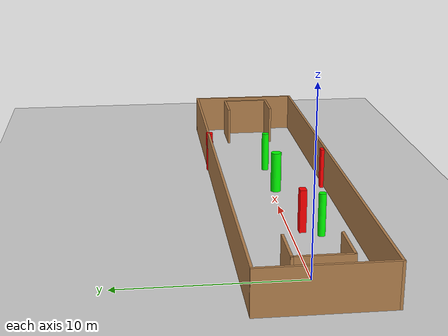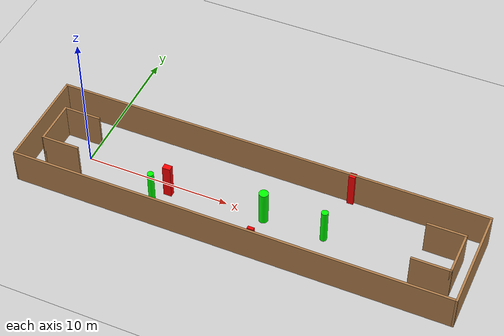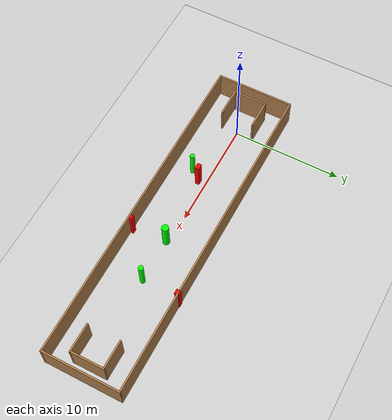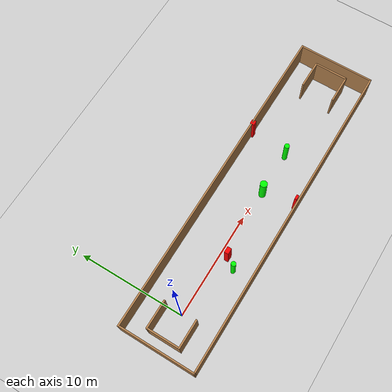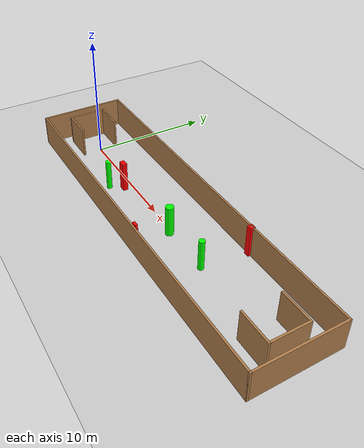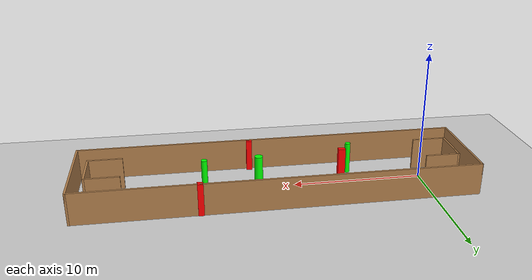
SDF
<sdf version="1.7">
 <world name="default">
  <light name="sun" type="directional">
   <pose>0 0 10 0 -0 0</pose>
   <diffuse>0.8 0.8 0.8 1</diffuse>
   <specular>0.2 0.2 0.2 1</specular>
   <attenuation>
    <range>1000</range>
    <constant>0.9</constant>
    <linear>0.01</linear>
    <quadratic>0.001</quadratic>
   </attenuation>
   <direction>-0.5 0.1 -0.9</direction>
   <spot><inner_angle>0</inner_angle><outer_angle>0</outer_angle><falloff>0</falloff></spot>
  </light>
  <model name="ground_plane">
   <static>1</static>
   <link name="link">
    <collision name="collision">
     <geometry><plane><normal>0 0 1</normal><size>100 100</size></plane></geometry>
     <surface>
      <contact><collide_bitmask>65535</collide_bitmask></contact>
      <friction><ode><mu>100</mu><mu2>50</mu2></ode></friction>
     </surface>
    </collision>
    <visual name="visual">
     <cast_shadows>0</cast_shadows>
     <geometry><plane><normal>0 0 1</normal><size>100 100</size></plane></geometry>
     <material>
      <script><uri>file://media/materials/scripts/gazebo.material</uri><name>Gazebo/Grey</name></script>
     </material>
    </visual>
   </link>
  </model>
  <gravity>0 0 -9.8</gravity>
  <magnetic_field>6e-06 2.3e-05 -4.2e-05</magnetic_field>
  <atmosphere type="adiabatic"/>
  <physics type="ode">
   <max_step_size>0.001</max_step_size>
   <real_time_factor>1</real_time_factor>
   <real_time_update_rate>1000</real_time_update_rate>
  </physics>
  <scene><ambient>0.4 0.4 0.4 1</ambient><background>0.7 0.7 0.7 1</background><shadows>1</shadows></scene>
  <spherical_coordinates>
   <surface_model>EARTH_WGS84</surface_model>
   <latitude_deg>0</latitude_deg>
   <longitude_deg>0</longitude_deg>
   <elevation>0</elevation>
   <heading_deg>0</heading_deg>
  </spherical_coordinates>
  <model name="my_base_walls">
   <link name="Wall_0">
    <collision name="Wall_0_Collision">
     <geometry><box><size>7.15 0.15 2.5</size></box></geometry>
     <pose>0 0 1.25 0 -0 0</pose>
    </collision>
    <visual name="Wall_0_Visual">
     <pose>0 0 1.25 0 -0 0</pose>
     <geometry><box><size>7.15 0.15 2.5</size></box></geometry>
     <material>
      <script><uri>file://media/materials/scripts/gazebo.material</uri><name>Gazebo/Wood</name></script>
      <ambient>1 1 1 1</ambient>
     </material>
     <meta><layer>0</layer></meta>
    </visual>
    <pose>-15 0 0 0 -0 1.5708</pose>
   </link>
   <link name="Wall_10">
    <collision name="Wall_10_Collision">
     <geometry><box><size>2.65 0.15 2.5</size></box></geometry>
     <pose>0 0 1.25 0 -0 0</pose>
    </collision>
    <visual name="Wall_10_Visual">
     <pose>0 0 1.25 0 -0 0</pose>
     <geometry><box><size>2.65 0.15 2.5</size></box></geometry>
     <material>
      <script><uri>file://media/materials/scripts/gazebo.material</uri><name>Gazebo/Wood</name></script>
      <ambient>1 1 1 1</ambient>
     </material>
     <meta><layer>0</layer></meta>
    </visual>
    <pose>-12.75 -1.5 0 0 -0 0</pose>
   </link>
   <link name="Wall_12">
    <collision name="Wall_12_Collision">
     <geometry><box><size>2.65 0.15 2.5</size></box></geometry>
     <pose>0 0 1.25 0 -0 0</pose>
    </collision>
    <visual name="Wall_12_Visual">
     <pose>0 0 1.25 0 -0 0</pose>
     <geometry><box><size>2.65 0.15 2.5</size></box></geometry>
     <material>
      <script><uri>file://media/materials/scripts/gazebo.material</uri><name>Gazebo/Wood</name></script>
      <ambient>1 1 1 1</ambient>
     </material>
     <meta><layer>0</layer></meta>
    </visual>
    <pose>-12.75 1.5 0 0 -0 0</pose>
   </link>
   <link name="Wall_14">
    <collision name="Wall_14_Collision">
     <geometry><box><size>3.15 0.15 2.5</size></box></geometry>
     <pose>0 0 1.25 0 -0 0</pose>
    </collision>
    <visual name="Wall_14_Visual">
     <pose>0 0 1.25 0 -0 0</pose>
     <geometry><box><size>3.15 0.15 2.5</size></box></geometry>
     <material>
      <script><uri>file://media/materials/scripts/gazebo.material</uri><name>Gazebo/Wood</name></script>
      <ambient>1 1 1 1</ambient>
     </material>
     <meta><layer>0</layer></meta>
    </visual>
    <pose>14 0 0 0 -0 -1.5708</pose>
   </link>
   <link name="Wall_15">
    <collision name="Wall_15_Collision">
     <geometry><box><size>2.65 0.15 2.5</size></box></geometry>
     <pose>0 0 1.25 0 -0 0</pose>
    </collision>
    <visual name="Wall_15_Visual">
     <pose>0 0 1.25 0 -0 0</pose>
     <geometry><box><size>2.65 0.15 2.5</size></box></geometry>
     <material>
      <script><uri>file://media/materials/scripts/gazebo.material</uri><name>Gazebo/Wood</name></script>
      <ambient>1 1 1 1</ambient>
     </material>
     <meta><layer>0</layer></meta>
    </visual>
    <pose>12.75 -1.5 0 0 -0 3.14159</pose>
   </link>
   <link name="Wall_17">
    <collision name="Wall_17_Collision">
     <geometry><box><size>2.65 0.15 2.5</size></box></geometry>
     <pose>0 0 1.25 0 -0 0</pose>
    </collision>
    <visual name="Wall_17_Visual">
     <pose>0 0 1.25 0 -0 0</pose>
     <geometry><box><size>2.65 0.15 2.5</size></box></geometry>
     <material>
      <script><uri>file://media/materials/scripts/gazebo.material</uri><name>Gazebo/Wood</name></script>
      <ambient>1 1 1 1</ambient>
     </material>
     <meta><layer>0</layer></meta>
    </visual>
    <pose>12.75 1.5 0 0 -0 3.14159</pose>
   </link>
   <link name="Wall_2">
    <collision name="Wall_2_Collision">
     <geometry><box><size>30.15 0.15 2.5</size></box></geometry>
     <pose>0 0 1.25 0 -0 0</pose>
    </collision>
    <visual name="Wall_2_Visual">
     <pose>0 0 1.25 0 -0 0</pose>
     <geometry><box><size>30.15 0.15 2.5</size></box></geometry>
     <material>
      <script><uri>file://media/materials/scripts/gazebo.material</uri><name>Gazebo/Wood</name></script>
      <ambient>1 1 1 1</ambient>
     </material>
     <meta><layer>0</layer></meta>
    </visual>
    <pose>-0 -3.5 0 0 -0 0</pose>
   </link>
   <link name="Wall_4">
    <collision name="Wall_4_Collision">
     <geometry><box><size>30.15 0.15 2.5</size></box></geometry>
     <pose>0 0 1.25 0 -0 0</pose>
    </collision>
    <visual name="Wall_4_Visual">
     <pose>0 0 1.25 0 -0 0</pose>
     <geometry><box><size>30.15 0.15 2.5</size></box></geometry>
     <material>
      <script><uri>file://media/materials/scripts/gazebo.material</uri><name>Gazebo/Wood</name></script>
      <ambient>1 1 1 1</ambient>
     </material>
     <meta><layer>0</layer></meta>
    </visual>
    <pose>-0 3.5 0 0 -0 0</pose>
   </link>
   <link name="Wall_6">
    <collision name="Wall_6_Collision">
     <geometry><box><size>7.15 0.15 2.5</size></box></geometry>
     <pose>0 0 1.25 0 -0 0</pose>
    </collision>
    <visual name="Wall_6_Visual">
     <pose>0 0 1.25 0 -0 0</pose>
     <geometry><box><size>7.15 0.15 2.5</size></box></geometry>
     <material>
      <script><uri>file://media/materials/scripts/gazebo.material</uri><name>Gazebo/Wood</name></script>
      <ambient>1 1 1 1</ambient>
     </material>
     <meta><layer>0</layer></meta>
    </visual>
    <pose>15 0 0 0 -0 -1.5708</pose>
   </link>
   <link name="Wall_9">
    <collision name="Wall_9_Collision">
     <geometry><box><size>3.15 0.15 2.5</size></box></geometry>
     <pose>0 0 1.25 0 -0 0</pose>
    </collision>
    <visual name="Wall_9_Visual">
     <pose>0 0 1.25 0 -0 0</pose>
     <geometry><box><size>3.15 0.15 2.5</size></box></geometry>
     <material>
      <script><uri>file://media/materials/scripts/gazebo.material</uri><name>Gazebo/Wood</name></script>
      <ambient>1 1 1 1</ambient>
     </material>
     <meta><layer>0</layer></meta>
    </visual>
    <pose>-14 0 0 0 -0 -1.5708</pose>
   </link>
   <static>1</static>
   <pose>11.5 0 0 0 -0 0</pose>
  </model>
  <model name="cylinder1">
   <static>1</static>
   <link name="link">
    <inertial>
     <mass>1</mass>
     <inertia><ixx>0.5</ixx><ixy>0</ixy><ixz>0</ixz><iyy>0.5</iyy><iyz>0</iyz><izz>1</izz></inertia>
    </inertial>
    <collision name="collision">
     <geometry><cylinder><radius>0.21608469257697277</radius><length>2.5</length></cylinder></geometry>
    </collision>
    <visual name="visual">
     <geometry><cylinder><radius>0.21608469257697277</radius><length>2.5</length></cylinder></geometry>
     <material>
      <ambient>0 1 0 1</ambient>
      <diffuse>0 1 0 1</diffuse>
      <specular>0.1 0.1 0.1 1</specular>
      <emissive>0 0 0 0</emissive>
     </material>
    </visual>
   </link>
   <pose>5.427602316103622 -1.6528176655564557 1.25 0 0 0</pose>
  </model>
  <model name="cylinder2">
   <static>1</static>
   <link name="link">
    <inertial>
     <mass>1</mass>
     <inertia><ixx>0.5</ixx><ixy>0</ixy><ixz>0</ixz><iyy>0.5</iyy><iyz>0</iyz><izz>1</izz></inertia>
    </inertial>
    <collision name="collision">
     <geometry><cylinder><radius>0.31786621061576986</radius><length>2.5</length></cylinder></geometry>
    </collision>
    <visual name="visual">
     <geometry><cylinder><radius>0.31786621061576986</radius><length>2.5</length></cylinder></geometry>
     <material>
      <ambient>0 1 0 1</ambient>
      <diffuse>0 1 0 1</diffuse>
      <specular>0.1 0.1 0.1 1</specular>
      <emissive>0 0 0 0</emissive>
     </material>
    </visual>
   </link>
   <pose>12.735750387891178 -0.2865017710358839 1.25 0 0 0</pose>
  </model>
  <model name="cylinder3">
   <static>1</static>
   <link name="link">
    <inertial>
     <mass>1</mass>
     <inertia><ixx>0.5</ixx><ixy>0</ixy><ixz>0</ixz><iyy>0.5</iyy><iyz>0</iyz><izz>1</izz></inertia>
    </inertial>
    <collision name="collision">
     <geometry><cylinder><radius>0.22917635506879297</radius><length>2.5</length></cylinder></geometry>
    </collision>
    <visual name="visual">
     <geometry><cylinder><radius>0.22917635506879297</radius><length>2.5</length></cylinder></geometry>
     <material>
      <ambient>0 1 0 1</ambient>
      <diffuse>0 1 0 1</diffuse>
      <specular>0.1 0.1 0.1 1</specular>
      <emissive>0 0 0 0</emissive>
     </material>
    </visual>
   </link>
   <pose>16.863668478195855 -0.2322785348996903 1.25 0 0 0</pose>
  </model>
  <model name="box1">
   <static>1</static>
   <link name="link">
    <inertial>
     <mass>1</mass>
     <inertia><ixx>0.083</ixx><ixy>0</ixy><ixz>0</ixz><iyy>0.083</iyy><iyz>0</iyz><izz>0.083</izz></inertia>
    </inertial>
    <collision name="collision">
     <geometry><box><size>0.43193724881017936 0.3971266837219529 2.5</size></box></geometry>
    </collision>
    <visual name="visual">
     <geometry><box><size>0.43193724881017936 0.3971266837219529 2.5</size></box></geometry>
     <material>
      <ambient>1 0 0 1</ambient>
      <diffuse>1 0 0 1</diffuse>
      <specular>0.1 0.1 0.1 1</specular>
      <emissive>0 0 0 0</emissive>
     </material>
    </visual>
    <sensor name="my_contact" type="contact">
     <contact><collision>box_collision</collision><topic>__default_topic__</topic></contact>
    </sensor>
   </link>
   <pose>17.333098407977538 3.4367528579828317 1.25 0 0 0</pose>
  </model>
  <model name="box2">
   <static>1</static>
   <link name="link">
    <inertial>
     <mass>1</mass>
     <inertia><ixx>0.083</ixx><ixy>0</ixy><ixz>0</ixz><iyy>0.083</iyy><iyz>0</iyz><izz>0.083</izz></inertia>
    </inertial>
    <collision name="collision">
     <geometry><box><size>0.5560313262881111 0.3859032787572043 2.5</size></box></geometry>
    </collision>
    <visual name="visual">
     <geometry><box><size>0.5560313262881111 0.3859032787572043 2.5</size></box></geometry>
     <material>
      <ambient>1 0 0 1</ambient>
      <diffuse>1 0 0 1</diffuse>
      <specular>0.1 0.1 0.1 1</specular>
      <emissive>0 0 0 0</emissive>
     </material>
    </visual>
    <sensor name="my_contact" type="contact">
     <contact><collision>box_collision</collision><topic>__default_topic__</topic></contact>
    </sensor>
   </link>
   <pose>6.15695487355849 -0.6907890915517632 1.25 0 0 0</pose>
  </model>
  <model name="box3">
   <static>1</static>
   <link name="link">
    <inertial>
     <mass>1</mass>
     <inertia><ixx>0.083</ixx><ixy>0</ixy><ixz>0</ixz><iyy>0.083</iyy><iyz>0</iyz><izz>0.083</izz></inertia>
    </inertial>
    <collision name="collision">
     <geometry><box><size>0.4317822032465851 0.21574699433279743 2.5</size></box></geometry>
    </collision>
    <visual name="visual">
     <geometry><box><size>0.4317822032465851 0.21574699433279743 2.5</size></box></geometry>
     <material>
      <ambient>1 0 0 1</ambient>
      <diffuse>1 0 0 1</diffuse>
      <specular>0.1 0.1 0.1 1</specular>
      <emissive>0 0 0 0</emissive>
     </material>
    </visual>
    <sensor name="my_contact" type="contact">
     <contact><collision>box_collision</collision><topic>__default_topic__</topic></contact>
    </sensor>
   </link>
   <pose>13.14110759265829 -3.259043204630183 1.25 0 0 0</pose>
  </model>
 </world>
</sdf>
